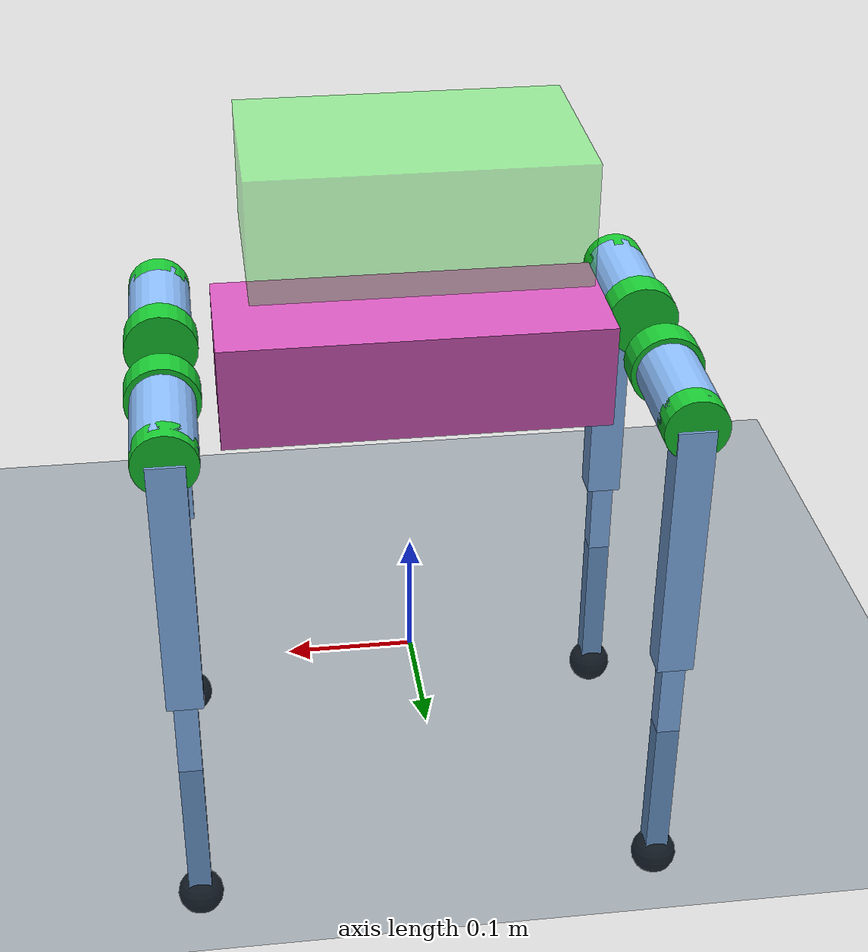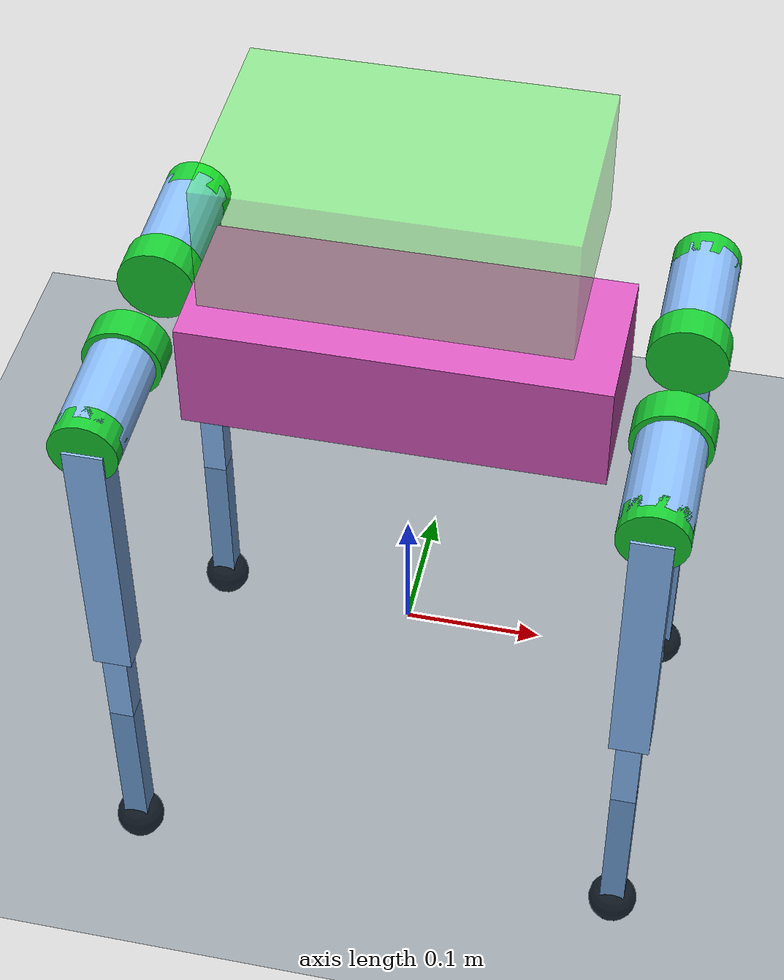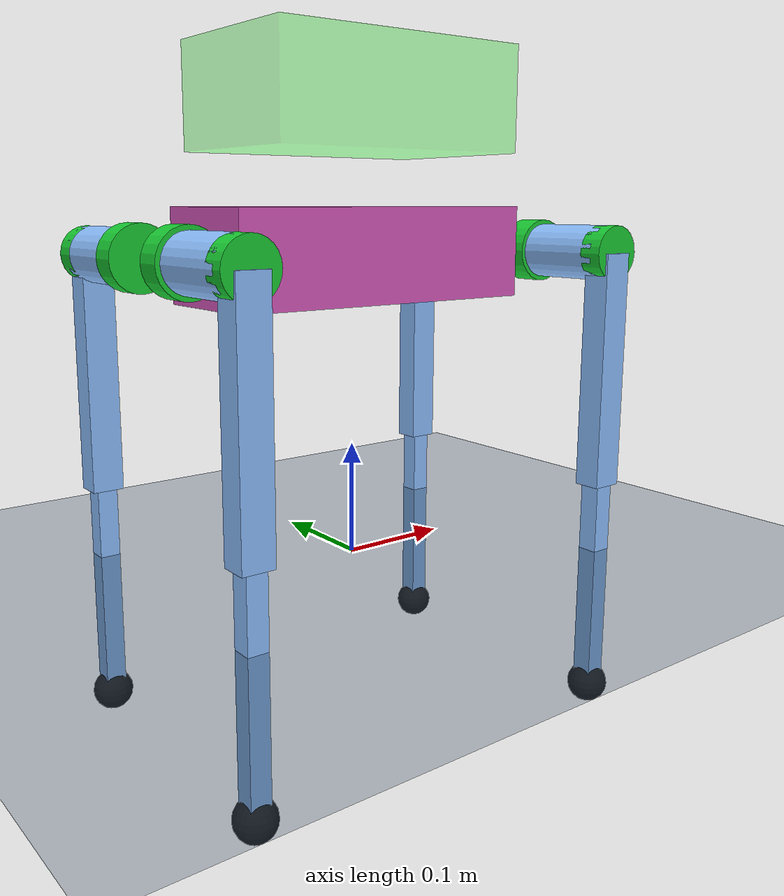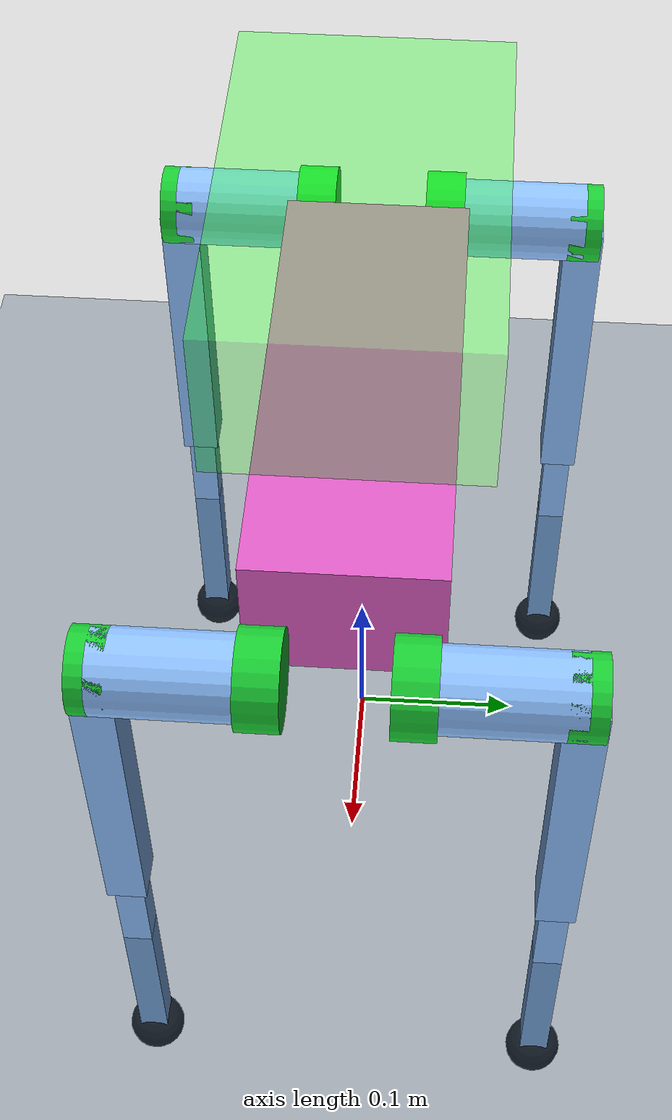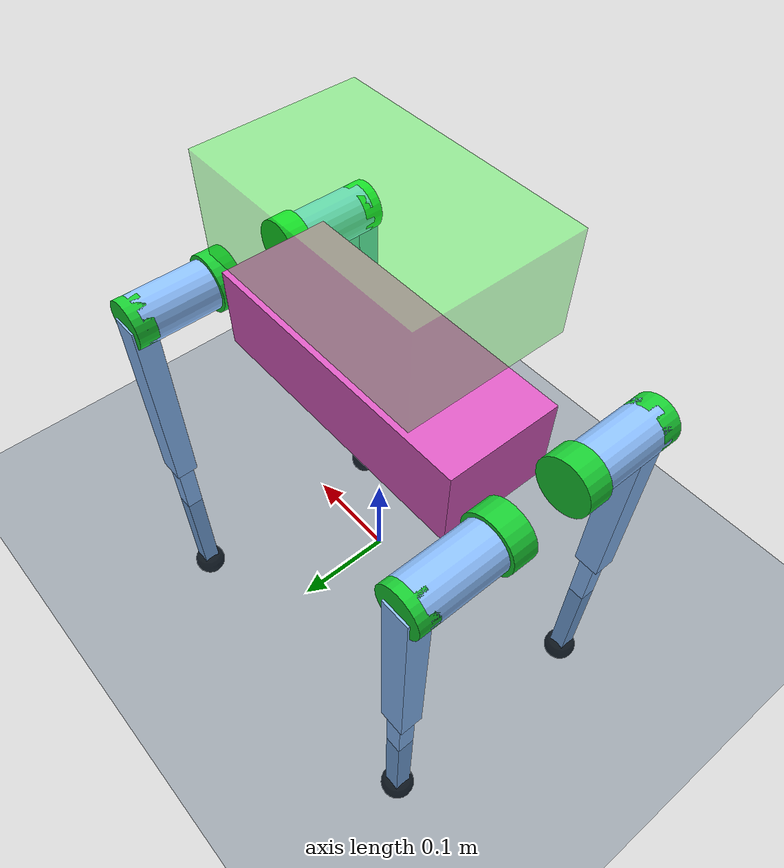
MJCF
<mujoco model="white_tigger_go1style">
  <option iterations="50" timestep="0.002" solver="PGS" gravity="0 0 -9.81" />

  <compiler angle="radian" eulerseq="zyx" autolimits="true" />

  <default>
    <joint limited="true" damping="0.01" armature="0.01" frictionloss="0.01" />
    <geom condim="4" contype="1" conaffinity="15" friction="0.9 0.2 0.2" solref="0.001 2" solimp="0.95 0.99 0.001" density="0" />
    <motor ctrllimited="true" />
    <default class="visualgeom">
      <geom contype="0" conaffinity="0" group="1" density="0" />
    </default>
  </default>

  <asset>
    <texture name="texplane" type="2d" builtin="checker" rgb1="0.1 0.2 0.3" rgb2="0.2 0.3 0.4" width="300" height="300" />
    <material name="matplane" reflectance="0.2" texture="texplane" texrepeat="5 5" texuniform="true" />
    <material name="bodymat" rgba="0.85 0.35 0.75 1" />
    <material name="legmat" rgba="0.55 0.75 1.0 1" />
    <material name="jointmat" rgba="0.1 0.8 0.2 1" />
    <material name="footmat" rgba="0.05 0.05 0.05 1" />
  </asset>

  <worldbody>
    <light directional="true" diffuse="0.6 0.6 0.7" specular="0.2 0.2 0.3" pos="0 0 5.0" dir="0 0 -1" castshadow="false" />
    <light directional="true" diffuse="0.8 0.8 0.9" specular="0.3 0.3 0.4" pos="0 0 4" dir="0 0 -1" />
    <geom name="ground" type="plane" pos="0 0 0" size="100 100 0.001" material="matplane" friction="0.8 0.005 0.0001" solref="0.0005 2" solimp="0.95 0.99 0.001" condim="3" priority="1"/>
    <camera name="fixed" pos="0 -3.0 0.83" xyaxes="1 0 0 0 0 1" />
    <camera name="track" mode="trackcom" pos="0 -3.0 0.83" xyaxes="1 0 0 0 0 1" />

    <body name="root" pos="0 0 0.27" quat="1 0 0 0">
      <freejoint name="root" />
      <inertial pos="-0.00154 0.00034 -0.00080" mass="3.9" diaginertia="0.0129 0.0428 0.0488" />
      <site name="imu_sensor" size="0.01" pos="0 0 0" />
      <geom name="base_collision" type="box" size="0.145 0.055 0.04" material="bodymat" />

      <body name="fr_hip_Link" pos="0.1842 -0.04 0">
        <inertial pos="0 -0.043925 0" mass="0.340437" diaginertia="0.000173064 0.000127555 0.000101583" />
        <joint name="fr_hip_joint" pos="0 0 0" axis="1 0 0" range="-0.8 0.8" actuatorfrcrange="-80 80" damping="0.01" frictionloss="0.05" />
        <geom name="fr_hip_link" type="cylinder" size="0.024 0.043925" pos="0 -0.043925 0" quat="0.707107 0.707107 0 0" material="legmat" />
        <geom name="fr_hip_joint_geom" type="cylinder" size="0.028 0.012" pos="0 0 0" quat="0.707107 0.707107 0 0" material="jointmat" />
        <body name="fr_thigh_Link" pos="0 -0.08785 0">
          <inertial pos="0 0 -0.1045" mass="0.33864" diaginertia="0.001027252820 0.000976518820 0.000086763100" />
          <joint name="fr_thigh_joint" pos="0 0 0" axis="0 1 0" range="-3.14 3.14" actuatorfrcrange="-80 80" damping="0.01" frictionloss="0.05" />
          <geom name="fr_thigh_link" type="box" size="0.1045 0.012 0.014" pos="0 0 -0.1045" quat="0.707107 0 0.707107 0" material="legmat" />
          <geom name="fr_thigh_joint_geom" type="cylinder" size="0.024 0.010" pos="0 0 0" quat="0.707107 0.707107 0 0" material="jointmat" />
          <body name="fr_calf_Link" pos="0 0 -0.209">
            <inertial pos="0 0 -0.0975" mass="0.0479189" diaginertia="0.000184195089 0.000182696089 0.000002770140" />
            <joint name="fr_calf_joint" pos="0 0 0" axis="0 1 0" range="-2.64 -0.5" actuatorfrcrange="-80 80" damping="0.01" frictionloss="0.05" />
            <geom name="fr_calf_link" type="box" size="0.0975 0.009 0.009" pos="0 0 -0.0975" quat="0.707107 0 0.707107 0" material="legmat" />
            <geom name="fr_foot_collision" type="sphere" pos="0 0 -0.195" size="0.018" material="footmat" friction="0.9 0.2 0.2" />
          </body>
        </body>
      </body>

      <body name="fl_hip_Link" pos="0.1842 0.04 0">
        <inertial pos="0 0.043925 0" mass="0.34044" diaginertia="0.000173052 0.00012756 0.000101598" />
        <joint name="fl_hip_joint" pos="0 0 0" axis="1 0 0" range="-0.8 0.8" actuatorfrcrange="-80 80" damping="0.01" frictionloss="0.05" />
        <geom name="fl_hip_link" type="cylinder" size="0.024 0.043925" pos="0 0.043925 0" quat="0.707107 0.707107 0 0" material="legmat" />
        <geom name="fl_hip_joint_geom" type="cylinder" size="0.028 0.012" pos="0 0 0" quat="0.707107 0.707107 0 0" material="jointmat" />
        <body name="fl_thigh_Link" pos="0 0.08785 0">
          <inertial pos="0 0 -0.1045" mass="0.338707" diaginertia="0.001027347820 0.000976656820 0.000086730500" />
          <joint name="fl_thigh_joint" pos="0 0 0" axis="0 1 0" range="-3.14 3.14" actuatorfrcrange="-80 80" damping="0.01" frictionloss="0.05" />
          <geom name="fl_thigh_link" type="box" size="0.1045 0.012 0.014" pos="0 0 -0.1045" quat="0.707107 0 0.707107 0" material="legmat" />
          <geom name="fl_thigh_joint_geom" type="cylinder" size="0.024 0.010" pos="0 0 0" quat="0.707107 0.707107 0 0" material="jointmat" />
          <body name="fl_calf_Link" pos="0 0 -0.209">
            <inertial pos="0 0 -0.0975" mass="0.0479193" diaginertia="0.000184196089 0.000182696089 0.000002770920" />
            <joint name="fl_calf_joint" pos="0 0 0" axis="0 1 0" range="-2.64 -0.5" actuatorfrcrange="-80 80" damping="0.01" frictionloss="0.05" />
            <geom name="fl_calf_link" type="box" size="0.0975 0.009 0.009" pos="0 0 -0.0975" quat="0.707107 0 0.707107 0" material="legmat" />
            <geom name="fl_foot_collision" type="sphere" pos="0 0 -0.195" size="0.018" material="footmat" friction="0.9 0.2 0.2" />
          </body>
        </body>
      </body>

      <body name="br_hip_Link" pos="-0.1842 -0.04 0">
        <inertial pos="0 -0.043925 0" mass="0.34044" diaginertia="0.00017305 0.00012741 0.00010174" />
        <joint name="br_hip_joint" pos="0 0 0" axis="1 0 0" range="-0.8 0.8" actuatorfrcrange="-80 80" damping="0.01" frictionloss="0.05" />
        <geom name="br_hip_link" type="cylinder" size="0.024 0.043925" pos="0 -0.043925 0" quat="0.707107 0.707107 0 0" material="legmat" />
        <geom name="br_hip_joint_geom" type="cylinder" size="0.028 0.012" pos="0 0 0" quat="0.707107 0.707107 0 0" material="jointmat" />
        <body name="br_thigh_Link" pos="0 -0.08785 0">
          <inertial pos="0 0 -0.1045" mass="0.338644" diaginertia="0.001027249820 0.000976445820 0.000086839100" />
          <joint name="br_thigh_joint" pos="0 0 0" axis="0 1 0" range="-3.14 3.14" actuatorfrcrange="-80 80" damping="0.01" frictionloss="0.05" />
          <geom name="br_thigh_link" type="box" size="0.1045 0.012 0.014" pos="0 0 -0.1045" quat="0.707107 0 0.707107 0" material="legmat" />
          <geom name="br_thigh_joint_geom" type="cylinder" size="0.024 0.010" pos="0 0 0" quat="0.707107 0.707107 0 0" material="jointmat" />
          <body name="br_calf_Link" pos="0 0 -0.209">
            <inertial pos="0 0 -0.0975" mass="0.0479194" diaginertia="0.000184194089 0.000182696089 0.000002768370" />
            <joint name="br_calf_joint" pos="0 0 0" axis="0 1 0" range="-2.64 -0.5" actuatorfrcrange="-80 80" damping="0.01" frictionloss="0.05" />
            <geom name="br_calf_link" type="box" size="0.0975 0.009 0.009" pos="0 0 -0.0975" quat="0.707107 0 0.707107 0" material="legmat" />
            <geom name="br_foot_collision" type="sphere" pos="0 0 -0.195" size="0.018" material="footmat" friction="0.9 0.2 0.2" />
          </body>
        </body>
      </body>

      <body name="bl_hip_Link" pos="-0.1842 0.04 0">
        <inertial pos="0 0.043925 0" mass="0.34044" diaginertia="0.00017305 0.00012741 0.00010174" />
        <joint name="bl_hip_joint" pos="0 0 0" axis="1 0 0" range="-0.8 0.8" actuatorfrcrange="-80 80" damping="0.01" frictionloss="0.05" />
        <geom name="bl_hip_link" type="cylinder" size="0.024 0.043925" pos="0 0.043925 0" quat="0.707107 0.707107 0 0" material="legmat" />
        <geom name="bl_hip_joint_geom" type="cylinder" size="0.028 0.012" pos="0 0 0" quat="0.707107 0.707107 0 0" material="jointmat" />
        <body name="bl_thigh_Link" pos="0 0.08785 0">
          <inertial pos="0 0 -0.1045" mass="0.338707" diaginertia="0.001027347820 0.000976583820 0.000086802500" />
          <joint name="bl_thigh_joint" pos="0 0 0" axis="0 1 0" range="-3.14 3.14" actuatorfrcrange="-80 80" damping="0.01" frictionloss="0.05" />
          <geom name="bl_thigh_link" type="box" size="0.1045 0.012 0.014" pos="0 0 -0.1045" quat="0.707107 0 0.707107 0" material="legmat" />
          <geom name="bl_thigh_joint_geom" type="cylinder" size="0.024 0.010" pos="0 0 0" quat="0.707107 0.707107 0 0" material="jointmat" />
          <body name="bl_calf_Link" pos="0 0 -0.209">
            <inertial pos="0 0 -0.0975" mass="0.0479193" diaginertia="0.000184194089 0.000182696089 0.000002768380" />
            <joint name="bl_calf_joint" pos="0 0 0" axis="0 1 0" range="-2.64 -0.5" actuatorfrcrange="-80 80" damping="0.01" frictionloss="0.05" />
            <geom name="bl_calf_link" type="box" size="0.0975 0.009 0.009" pos="0 0 -0.0975" quat="0.707107 0 0.707107 0" material="legmat" />
            <geom name="bl_foot_collision" type="sphere" pos="0 0 -0.195" size="0.018" material="footmat" friction="0.9 0.2 0.2" />
          </body>
        </body>
      </body>
    </body>

    <body name="estimator_box" mocap="true" pos="0 0 0.4" quat="1 0 0 0">
      <geom name="estimator_box_geom" type="box" size="0.12 0.075 0.045" rgba="0.1 1.0 0.1 0.35" contype="0" conaffinity="0" density="0" group="2" />
    </body>
  </worldbody>

  <contact>
    <exclude body1="root" body2="fr_hip_Link" />
    <exclude body1="root" body2="fl_hip_Link" />
    <exclude body1="root" body2="br_hip_Link" />
    <exclude body1="root" body2="bl_hip_Link" />
    <exclude body1="fr_hip_Link" body2="fr_thigh_Link" />
    <exclude body1="fl_hip_Link" body2="fl_thigh_Link" />
    <exclude body1="br_hip_Link" body2="br_thigh_Link" />
    <exclude body1="bl_hip_Link" body2="bl_thigh_Link" />
    <exclude body1="fr_thigh_Link" body2="fr_calf_Link" />
    <exclude body1="fl_thigh_Link" body2="fl_calf_Link" />
    <exclude body1="br_thigh_Link" body2="br_calf_Link" />
    <exclude body1="bl_thigh_Link" body2="bl_calf_Link" />
    <exclude body1="fr_hip_Link" body2="fr_calf_Link" />
    <exclude body1="fl_hip_Link" body2="fl_calf_Link" />
    <exclude body1="br_hip_Link" body2="br_calf_Link" />
    <exclude body1="bl_hip_Link" body2="bl_calf_Link" />
  </contact>

  <keyframe>
    <key name="init_pose"
         qpos="0 0 0.27 1 0 0 0 -0.2 0.98 -2.64 0.2 0.98 -2.64 -0.2 0.98 -2.64 0.2 0.98 -2.64" />
  </keyframe>

  <actuator>
    <motor name="fr_hip_joint" joint="fr_hip_joint" ctrllimited="true" ctrlrange="-80 80" gear="1" />
    <motor name="fr_thigh_joint" joint="fr_thigh_joint" ctrllimited="true" ctrlrange="-80 80" gear="1" />
    <motor name="fr_calf_joint" joint="fr_calf_joint" ctrllimited="true" ctrlrange="-80 80" gear="1" />
    <motor name="fl_hip_joint" joint="fl_hip_joint" ctrllimited="true" ctrlrange="-80 80" gear="1" />
    <motor name="fl_thigh_joint" joint="fl_thigh_joint" ctrllimited="true" ctrlrange="-80 80" gear="1" />
    <motor name="fl_calf_joint" joint="fl_calf_joint" ctrllimited="true" ctrlrange="-80 80" gear="1" />
    <motor name="br_hip_joint" joint="br_hip_joint" ctrllimited="true" ctrlrange="-80 80" gear="1" />
    <motor name="br_thigh_joint" joint="br_thigh_joint" ctrllimited="true" ctrlrange="-80 80" gear="1" />
    <motor name="br_calf_joint" joint="br_calf_joint" ctrllimited="true" ctrlrange="-80 80" gear="1" />
    <motor name="bl_hip_joint" joint="bl_hip_joint" ctrllimited="true" ctrlrange="-80 80" gear="1" />
    <motor name="bl_thigh_joint" joint="bl_thigh_joint" ctrllimited="true" ctrlrange="-80 80" gear="1" />
    <motor name="bl_calf_joint" joint="bl_calf_joint" ctrllimited="true" ctrlrange="-80 80" gear="1" />
  </actuator>

  <sensor>
    <actuatorpos name="fr_hip_joint_p" actuator="fr_hip_joint" />
    <actuatorvel name="fr_hip_joint_v" actuator="fr_hip_joint" />
    <actuatorfrc name="fr_hip_joint_f" actuator="fr_hip_joint" noise="0.00" />
    <actuatorpos name="fr_thigh_joint_p" actuator="fr_thigh_joint" />
    <actuatorvel name="fr_thigh_joint_v" actuator="fr_thigh_joint" />
    <actuatorfrc name="fr_thigh_joint_f" actuator="fr_thigh_joint" noise="0.00" />
    <actuatorpos name="fr_calf_joint_p" actuator="fr_calf_joint" />
    <actuatorvel name="fr_calf_joint_v" actuator="fr_calf_joint" />
    <actuatorfrc name="fr_calf_joint_f" actuator="fr_calf_joint" noise="0.00" />
    <actuatorpos name="fl_hip_joint_p" actuator="fl_hip_joint" />
    <actuatorvel name="fl_hip_joint_v" actuator="fl_hip_joint" />
    <actuatorfrc name="fl_hip_joint_f" actuator="fl_hip_joint" noise="0.00" />
    <actuatorpos name="fl_thigh_joint_p" actuator="fl_thigh_joint" />
    <actuatorvel name="fl_thigh_joint_v" actuator="fl_thigh_joint" />
    <actuatorfrc name="fl_thigh_joint_f" actuator="fl_thigh_joint" noise="0.00" />
    <actuatorpos name="fl_calf_joint_p" actuator="fl_calf_joint" />
    <actuatorvel name="fl_calf_joint_v" actuator="fl_calf_joint" />
    <actuatorfrc name="fl_calf_joint_f" actuator="fl_calf_joint" noise="0.00" />
    <actuatorpos name="br_hip_joint_p" actuator="br_hip_joint" />
    <actuatorvel name="br_hip_joint_v" actuator="br_hip_joint" />
    <actuatorfrc name="br_hip_joint_f" actuator="br_hip_joint" noise="0.00" />
    <actuatorpos name="br_thigh_joint_p" actuator="br_thigh_joint" />
    <actuatorvel name="br_thigh_joint_v" actuator="br_thigh_joint" />
    <actuatorfrc name="br_thigh_joint_f" actuator="br_thigh_joint" noise="0.00" />
    <actuatorpos name="br_calf_joint_p" actuator="br_calf_joint" />
    <actuatorvel name="br_calf_joint_v" actuator="br_calf_joint" />
    <actuatorfrc name="br_calf_joint_f" actuator="br_calf_joint" noise="0.00" />
    <actuatorpos name="bl_hip_joint_p" actuator="bl_hip_joint" />
    <actuatorvel name="bl_hip_joint_v" actuator="bl_hip_joint" />
    <actuatorfrc name="bl_hip_joint_f" actuator="bl_hip_joint" noise="0.00" />
    <actuatorpos name="bl_thigh_joint_p" actuator="bl_thigh_joint" />
    <actuatorvel name="bl_thigh_joint_v" actuator="bl_thigh_joint" />
    <actuatorfrc name="bl_thigh_joint_f" actuator="bl_thigh_joint" noise="0.00" />
    <actuatorpos name="bl_calf_joint_p" actuator="bl_calf_joint" />
    <actuatorvel name="bl_calf_joint_v" actuator="bl_calf_joint" />
    <actuatorfrc name="bl_calf_joint_f" actuator="bl_calf_joint" noise="0.00" />
    <framequat name="imu_quat" objtype="site" noise="0.00" objname="imu_sensor" />
    <gyro name="imu_gyro" site="imu_sensor" noise="0.00" cutoff="34.9" />
    <accelerometer name="imu_acc" site="imu_sensor" noise="0.00" />
  </sensor>
</mujoco>
